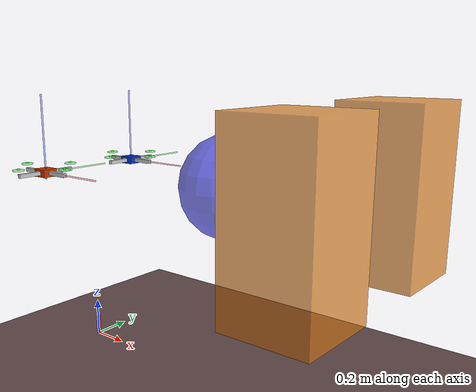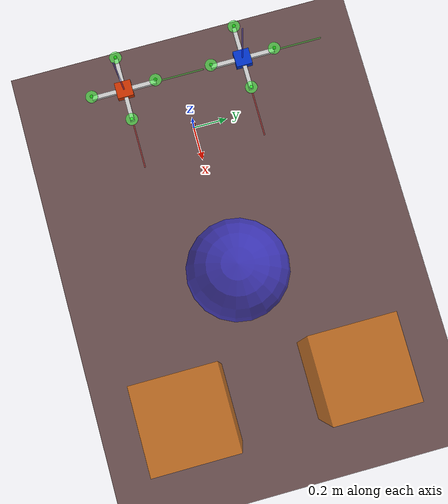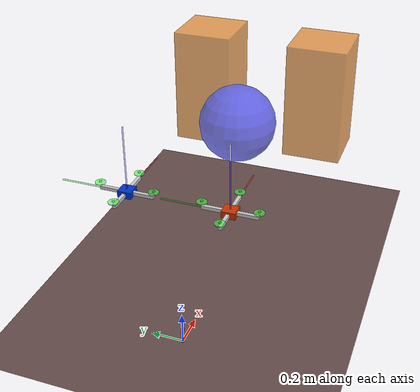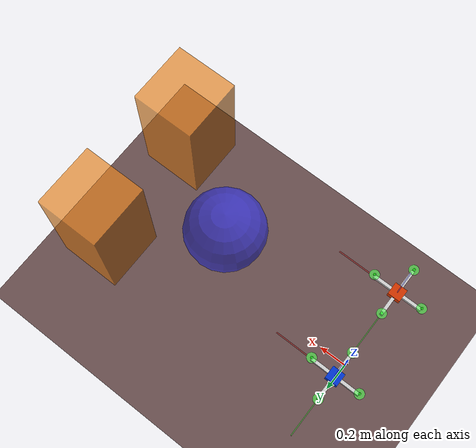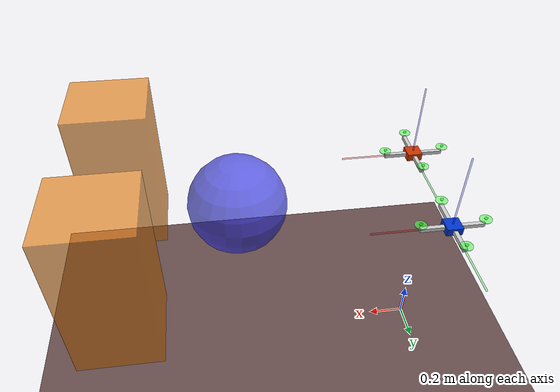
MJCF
<mujoco model="drone_3d_free_obs">
  <compiler angle="degree" inertiafromgeom="true" coordinate="local"/>
  <option timestep="0.01" gravity="0 0 -9.81" density="1" viscosity="1e-5" integrator="RK4"/>

  <default>
    <joint damping="0.02" stiffness="0.001" limited="false"/>
    <geom condim="3" density="200" friction="1 0.5 0.5" margin="0.01" rgba="0.8 0.6 0.4 1"/>
  </default>

  <asset>
    <texture builtin="gradient" type="skybox" height="100" width="100" rgb1="1 1 1" rgb2="0.6 0.8 1"/>
    <texture name="texplane" builtin="checker" height="100" width="100" rgb1="0.7 0.7 0.7" rgb2="0.9 0.9 0.9" type="2d"/>
    <material name="MatPlane" reflectance="0.3" shininess="1" specular="0.5" texrepeat="5 5" texture="texplane"/>
    <material name="MatDrone" specular="0.5" shininess="1" rgba="0.8 0.2 0.2 1"/>
  </asset>

  <worldbody>
    <light cutoff="100" diffuse="1 1 1" dir="-0 0 -1.3" directional="true" exponent="1"
           pos="0 0 1.3" specular=".1 .1 .1"/>
    <geom material="MatPlane" name="floor" pos="0 0 0" rgba="0.4 0.3 0.3 1" size="5 5 0.2" type="plane"/>

    <!-- Obstáculos (solo visuales) -->
    <!-- Esfera -->
    <geom name="obs_sphere_0" type="sphere" pos="1.0 0.0 1.0" size="0.25"
          rgba="0.2 0.2 0.9 0.7" contype="0" conaffinity="0"/>

    <!-- Caja derecha -->
    <geom name="obs_box_0" type="box" pos="1.6 0.4 1.0" size="0.20 0.20 0.40"
          rgba="0.9 0.5 0.1 0.7" contype="0" conaffinity="0"/>

    <!-- Caja izquierda -->
    <geom name="obs_box_1" type="box" pos="1.6 -0.4 1.0" size="0.20 0.20 0.40"
          rgba="0.9 0.5 0.1 0.7" contype="0" conaffinity="0"/>

    <!-- FIRST QUADROTOR 🚁 -->
    <body name="core_1" pos="0.0 -0.3 1.0">
        <geom name="core_geom_1" type="box" pos="0 0 0" quat="1 0 0 0" size=".04 .04 .02" rgba=".8 .2 0 1" mass="0.30"/>
        <joint name="root_1" type="free" damping="0" armature="0" pos="0 0 0" limited="false"/>

        <!-- Site en el centro del cuerpo para aplicar wrench (u1,u2,u3,u4) -->
        <site name="com_site_1" pos="0 0 0" size="0.006" rgba="1 0 0 1"/>

        <!-- brazos y motores -->
        <geom name="arm_front_1" type="box" pos=" 0.10 0 0" size="0.06 0.01 0.01" rgba="0.8 0.8 0.8 1" mass="0.02"/>
        <geom name="arm_back_1" type="box" pos="-0.10 0 0" size="0.06 0.01 0.01" rgba="0.8 0.8 0.8 1" mass="0.02"/>
        <geom name="arm_left_1" type="box" pos="0  0.10 0" size="0.01 0.06 0.01" rgba="0.8 0.8 0.8 1" mass="0.02"/>
        <geom name="arm_right_1" type="box" pos="0 -0.10 0" size="0.01 0.06 0.01" rgba="0.8 0.8 0.8 1" mass="0.02"/>

        <body name="prop0_1" pos=" 0.16  0.00 0.03">
          <geom type="cylinder" size="0.03 0.003" rgba="0.3 1 0.3 0.6"/>
          <site name="motor0_1" pos="0 0 0.003" size="0.008" rgba="0 1 0 0.7" type="cylinder"/>
        </body>
        <body name="prop1_1" pos="-0.16  0.00 0.03">
          <geom type="cylinder" size="0.03 0.003" rgba="0.3 1 0.3 0.6"/>
          <site name="motor1_1" pos="0 0 0.003" size="0.008" rgba="0 1 0 0.7" type="cylinder"/>
        </body>
        <body name="prop2_1" pos=" 0.00  0.16 0.03">
          <geom type="cylinder" size="0.03 0.003" rgba="0.3 1 0.3 0.6"/>
          <site name="motor2_1" pos="0 0 0.003" size="0.008" rgba="0 1 0 0.7" type="cylinder"/>
        </body>
        <body name="prop3_1" pos=" 0.00 -0.16 0.03">
          <geom type="cylinder" size="0.03 0.003" rgba="0.3 1 0.3 0.6"/>
          <site name="motor3_1" pos="0 0 0.003" size="0.008" rgba="0 1 0 0.7" type="cylinder"/>
        </body>

        <site name="x_axis_1" type="box" pos="0.20 0 0" size="0.20 0.003 0.003" rgba="1 0 0 0.3"/>
        <site name="y_axis_1" type="box" pos="0 0.20 0" size="0.003 0.20 0.003" rgba="0 1 0 0.3"/>
        <site name="z_axis_1" type="box" pos="0 0 0.20" size="0.003 0.003 0.20" rgba="0 0 1 0.3"/>

          <site name="attach_left" pos="0 0 -0.03"/>
      </body>

    <!-- SECOND QUADROTOR 🚁 -->
    <body name="core_2" pos="0.0 0.3 1.0">
        <geom name="core_geom_2" type="box" pos="0 0 0" quat="1 0 0 0" size=".04 .04 .02" rgba="0 0.2 0.8 1" mass="0.30"/>
        <joint name="root_2" type="free" damping="0" armature="0" pos="0 0 0" limited="false"/>

        <!-- Site en el centro del cuerpo para aplicar wrench (u1,u2,u3,u4) -->
        <site name="com_site_2" pos="0 0 0" size="0.006" rgba="1 0 0 1"/>

        <geom name="arm_front_2" type="box" pos=" 0.10 0 0" size="0.06 0.01 0.01" rgba="0.8 0.8 0.8 1" mass="0.02"/>
        <geom name="arm_back_2" type="box" pos="-0.10 0 0" size="0.06 0.01 0.01" rgba="0.8 0.8 0.8 1" mass="0.02"/>
        <geom name="arm_left_2" type="box" pos="0  0.10 0" size="0.01 0.06 0.01" rgba="0.8 0.8 0.8 1" mass="0.02"/>
        <geom name="arm_right_2" type="box" pos="0 -0.10 0" size="0.01 0.06 0.01" rgba="0.8 0.8 0.8 1" mass="0.02"/>

        <body name="arm_front_2" pos=" 0.16  0.00 0.03">
          <geom type="cylinder" size="0.03 0.003" rgba="0.3 1 0.3 0.6"/>
          <site name="motor0_2" pos="0 0 0.003" size="0.008" rgba="0 1 0 0.7" type="cylinder"/>
        </body>
        <body name="arm_back_2" pos="-0.16  0.00 0.03">
          <geom type="cylinder" size="0.03 0.003" rgba="0.3 1 0.3 0.6"/>
          <site name="motor1_2" pos="0 0 0.003" size="0.008" rgba="0 1 0 0.7" type="cylinder"/>
        </body>
        <body name="arm_left_2" pos=" 0.00  0.16 0.03">
          <geom type="cylinder" size="0.03 0.003" rgba="0.3 1 0.3 0.6"/>
          <site name="motor2_2" pos="0 0 0.003" size="0.008" rgba="0 1 0 0.7" type="cylinder"/>
        </body>
        <body name="arm_right_2" pos=" 0.00 -0.16 0.03">
          <geom type="cylinder" size="0.03 0.003" rgba="0.3 1 0.3 0.6"/>
          <site name="motor3_2" pos="0 0 0.003" size="0.008" rgba="0 1 0 0.7" type="cylinder"/>
        </body>

        <site name="x_axis_2" type="box" pos="0.20 0 0" size="0.20 0.003 0.003" rgba="1 0 0 0.3"/>
        <site name="y_axis_2" type="box" pos="0 0.20 0" size="0.003 0.20 0.003" rgba="0 1 0 0.3"/>
        <site name="z_axis_2" type="box" pos="0 0 0.20" size="0.003 0.003 0.20" rgba="0 0 1 0.3"/>
      </body>

    <!-- Flecha visual 1 (mocap) para mostrar F_des1 -->
    <body name="force_arrow_1" mocap="true" pos="0 0 0">
      <geom name="force_geom_1"
            type="capsule"
            size="0.01 0.10"
            rgba="1 0 0 1"
            contype="0"
            conaffinity="0"
            mass="0"/>
    </body>

    <!-- Flecha visual 2 (mocap) para mostrar F_des2 -->
    <body name="force_arrow_2" mocap="true" pos="0 0 0">
      <geom name="force_geom_2"
            type="capsule"
            size="0.01 0.10"
            rgba="1 0 0 1"
            contype="0"
            conaffinity="0"
            mass="0"/>
    </body>

  </worldbody>

  <actuator>
      <!-- DRON 1: u1,u2,u3,u4 -->
      <general name="u1_thrust_1" site="com_site_1"
              ctrllimited="true" ctrlrange="0 10"
              gear="0 0 1  0 0 0"/>

      <general name="u2_tau_x_1" site="com_site_1"
              ctrllimited="true" ctrlrange="-1 1"
              gear="0 0 0  1 0 0"/>

      <general name="u3_tau_y_1" site="com_site_1"
              ctrllimited="true" ctrlrange="-1 1"
              gear="0 0 0  0 1 0"/>

      <general name="u4_tau_z_1" site="com_site_1"
              ctrllimited="true" ctrlrange="-0.2 0.2"
              gear="0 0 0  0 0 1"/>

      <!-- DRON 2: u1,u2,u3,u4 -->
      <general name="u1_thrust_2" site="com_site_2"
              ctrllimited="true" ctrlrange="0 10"
              gear="0 0 1  0 0 0"/>

      <general name="u2_tau_x_2" site="com_site_2"
              ctrllimited="true" ctrlrange="-1 1"
              gear="0 0 0  1 0 0"/>

      <general name="u3_tau_y_2" site="com_site_2"
              ctrllimited="true" ctrlrange="-1 1"
              gear="0 0 0  0 1 0"/>

      <general name="u4_tau_z_2" site="com_site_2"
              ctrllimited="true" ctrlrange="-0.2 0.2"
              gear="0 0 0  0 0 1"/>
  </actuator>

  <sensor>
      <!-- Primer dron -->
      <framepos  name="pos_core_1"  objtype="body" objname="core_1"/>
      <framequat name="quat_core_1" objtype="body" objname="core_1"/>

      <!-- Segundo dron -->
      <framepos  name="pos_core_2"  objtype="body" objname="core_2"/>
      <framequat name="quat_core_2" objtype="body" objname="core_2"/>
  </sensor>
</mujoco>
